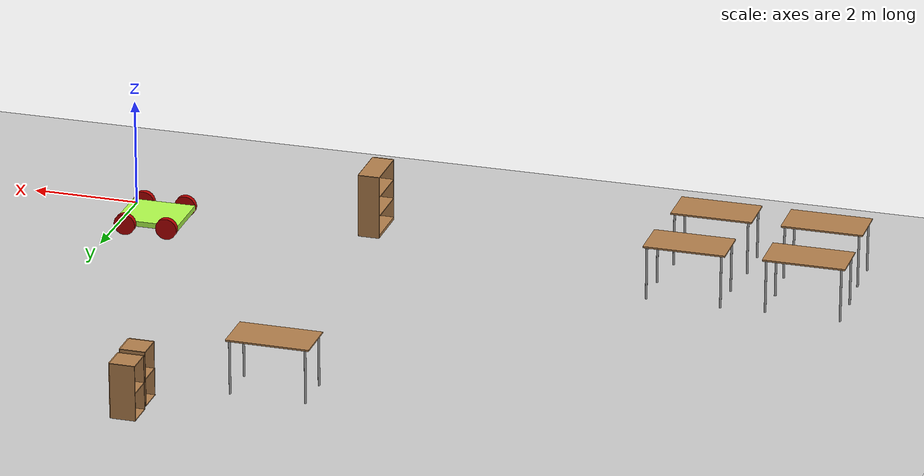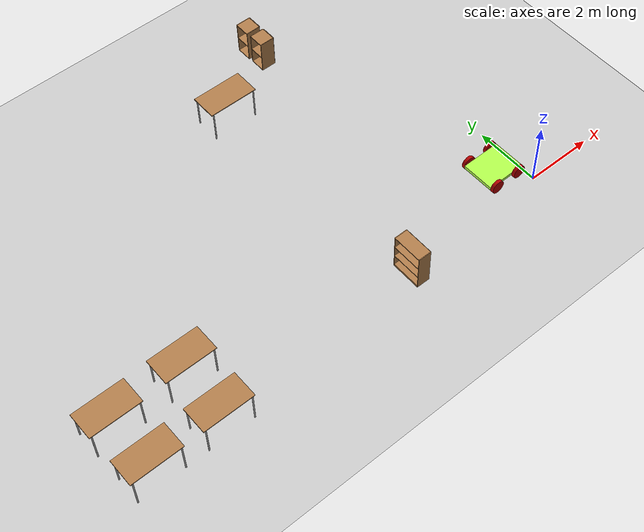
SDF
<sdf version="1.6">
 <world name="default">
  <model name="ground_plane">
   <static>1</static>
   <link name="link">
    <collision name="collision">
     <geometry><plane><normal>0 0 1</normal><size>100 100</size></plane></geometry>
     <surface>
      <contact><collide_bitmask>65535</collide_bitmask></contact>
      <friction><ode><mu>100</mu><mu2>50</mu2></ode></friction>
     </surface>
    </collision>
    <visual name="visual">
     <cast_shadows>0</cast_shadows>
     <geometry><plane><normal>0 0 1</normal><size>100 100</size></plane></geometry>
     <material>
      <script><uri>file://media/materials/scripts/gazebo.material</uri><name>Gazebo/Grey</name></script>
     </material>
    </visual>
   </link>
  </model>
  <model name="bookshelf_clone_1">
   <static>1</static>
   <link name="link">
    <inertial><mass>1</mass></inertial>
    <collision name="back">
     <pose>0 0.005 0.6 0 -0 0</pose>
     <geometry><box><size>0.9 0.01 1.2</size></box></geometry>
    </collision>
    <visual name="visual1">
     <pose>0 0.005 0.6 0 -0 0</pose>
     <geometry><box><size>0.9 0.01 1.2</size></box></geometry>
     <material>
      <script><uri>file://media/materials/scripts/gazebo.material</uri><name>Gazebo/Wood</name></script>
     </material>
    </visual>
    <collision name="left_side">
     <pose>0.45 -0.195 0.6 0 -0 0</pose>
     <geometry><box><size>0.02 0.4 1.2</size></box></geometry>
    </collision>
    <visual name="visual2">
     <pose>0.45 -0.195 0.6 0 -0 0</pose>
     <geometry><box><size>0.02 0.4 1.2</size></box></geometry>
     <material>
      <script><uri>file://media/materials/scripts/gazebo.material</uri><name>Gazebo/Wood</name></script>
     </material>
    </visual>
    <collision name="right_side">
     <pose>-0.45 -0.195 0.6 0 -0 0</pose>
     <geometry><box><size>0.02 0.4 1.2</size></box></geometry>
    </collision>
    <visual name="visual3">
     <pose>-0.45 -0.195 0.6 0 -0 0</pose>
     <geometry><box><size>0.02 0.4 1.2</size></box></geometry>
     <material>
      <script><uri>file://media/materials/scripts/gazebo.material</uri><name>Gazebo/Wood</name></script>
     </material>
    </visual>
    <collision name="bottom">
     <pose>0 -0.195 0.03 0 -0 0</pose>
     <geometry><box><size>0.88 0.4 0.06</size></box></geometry>
    </collision>
    <visual name="visual4">
     <pose>0 -0.195 0.03 0 -0 0</pose>
     <geometry><box><size>0.88 0.4 0.06</size></box></geometry>
     <material>
      <script><uri>file://media/materials/scripts/gazebo.material</uri><name>Gazebo/Wood</name></script>
     </material>
    </visual>
    <collision name="top">
     <pose>0 -0.195 1.19 0 -0 0</pose>
     <geometry><box><size>0.88 0.4 0.02</size></box></geometry>
    </collision>
    <visual name="visual5">
     <pose>0 -0.195 1.19 0 -0 0</pose>
     <geometry><box><size>0.88 0.4 0.02</size></box></geometry>
     <material>
      <script><uri>file://media/materials/scripts/gazebo.material</uri><name>Gazebo/Wood</name></script>
     </material>
    </visual>
    <collision name="low_shelf">
     <pose>0 -0.195 0.43 0 -0 0</pose>
     <geometry><box><size>0.88 0.4 0.02</size></box></geometry>
    </collision>
    <visual name="visual6">
     <pose>0 -0.195 0.43 0 -0 0</pose>
     <geometry><box><size>0.88 0.4 0.02</size></box></geometry>
     <material>
      <script><uri>file://media/materials/scripts/gazebo.material</uri><name>Gazebo/Wood</name></script>
     </material>
    </visual>
    <collision name="high_shelf">
     <pose>0 -0.195 0.8 0 -0 0</pose>
     <geometry><box><size>0.88 0.4 0.02</size></box></geometry>
    </collision>
    <visual name="visual7">
     <pose>0 -0.195 0.8 0 -0 0</pose>
     <geometry><box><size>0.88 0.4 0.02</size></box></geometry>
     <material>
      <script><uri>file://media/materials/scripts/gazebo.material</uri><name>Gazebo/Wood</name></script>
     </material>
    </visual>
   </link>
   <pose>-4.38763 -0.137134 0 0 0 -1.57079</pose>
  </model>
  <model name="table_clone_1">
   <static>1</static>
   <link name="link">
    <collision name="surface">
     <pose>0 0 1 0 -0 0</pose>
     <geometry><box><size>1.5 0.8 0.03</size></box></geometry>
     <surface><friction><ode><mu>0.6</mu><mu2>0.6</mu2></ode></friction></surface>
    </collision>
    <visual name="visual1">
     <pose>0 0 1 0 -0 0</pose>
     <geometry><box><size>1.5 0.8 0.03</size></box></geometry>
     <material>
      <script><uri>file://media/materials/scripts/gazebo.material</uri><name>Gazebo/Wood</name></script>
     </material>
    </visual>
    <collision name="front_left_leg">
     <pose>0.68 0.38 0.5 0 -0 0</pose>
     <geometry><cylinder><radius>0.02</radius><length>1</length></cylinder></geometry>
    </collision>
    <visual name="front_left_leg">
     <pose>0.68 0.38 0.5 0 -0 0</pose>
     <geometry><cylinder><radius>0.02</radius><length>1</length></cylinder></geometry>
     <material>
      <script><uri>file://media/materials/scripts/gazebo.material</uri><name>Gazebo/Grey</name></script>
     </material>
    </visual>
    <collision name="front_right_leg">
     <pose>0.68 -0.38 0.5 0 -0 0</pose>
     <geometry><cylinder><radius>0.02</radius><length>1</length></cylinder></geometry>
    </collision>
    <visual name="front_right_leg">
     <pose>0.68 -0.38 0.5 0 -0 0</pose>
     <geometry><cylinder><radius>0.02</radius><length>1</length></cylinder></geometry>
     <material>
      <script><uri>file://media/materials/scripts/gazebo.material</uri><name>Gazebo/Grey</name></script>
     </material>
    </visual>
    <collision name="back_right_leg">
     <pose>-0.68 -0.38 0.5 0 -0 0</pose>
     <geometry><cylinder><radius>0.02</radius><length>1</length></cylinder></geometry>
    </collision>
    <visual name="back_right_leg">
     <pose>-0.68 -0.38 0.5 0 -0 0</pose>
     <geometry><cylinder><radius>0.02</radius><length>1</length></cylinder></geometry>
     <material>
      <script><uri>file://media/materials/scripts/gazebo.material</uri><name>Gazebo/Grey</name></script>
     </material>
    </visual>
    <collision name="back_left_leg">
     <pose>-0.68 0.38 0.5 0 -0 0</pose>
     <geometry><cylinder><radius>0.02</radius><length>1</length></cylinder></geometry>
    </collision>
    <visual name="back_left_leg">
     <pose>-0.68 0.38 0.5 0 -0 0</pose>
     <geometry><cylinder><radius>0.02</radius><length>1</length></cylinder></geometry>
     <material>
      <script><uri>file://media/materials/scripts/gazebo.material</uri><name>Gazebo/Grey</name></script>
     </material>
    </visual>
   </link>
   <pose>-5.00424 7.11061 0 0 -0 0</pose>
  </model>
  <model name="cabinet">
   <static>1</static>
   <link name="cabinet_bottom_plate">
    <inertial>
     <pose>0 0 -1 0 -0 0</pose>
     <inertia><ixx>2.05</ixx><ixy>0</ixy><ixz>0</ixz><iyy>2.05</iyy><iyz>0</iyz><izz>2.05</izz></inertia>
     <mass>25</mass>
    </inertial>
    <collision name="cabinet_bottom_plate_geom">
     <pose>0 0 0.01 0 -0 0</pose>
     <geometry><box><size>0.45 0.45 0.02</size></box></geometry>
    </collision>
    <visual name="cabinet_bottom_plate_geom_visual">
     <pose>0 0 0.01 0 -0 0</pose>
     <geometry><box><size>0.45 0.45 0.02</size></box></geometry>
     <material>
      <script><uri>file://media/materials/scripts/gazebo.material</uri><name>Gazebo/Wood</name></script>
     </material>
    </visual>
    <collision name="cabinet_bottom_plate_geom_cabinet_back_plate">
     <pose>0.235 0 0.51 0 -0 0</pose>
     <geometry><box><size>0.02 0.45 1.02</size></box></geometry>
    </collision>
    <visual name="cabinet_bottom_plate_geom_cabinet_back_plate_visual">
     <pose>0.235 0 0.51 0 -0 0</pose>
     <geometry><box><size>0.02 0.45 1.02</size></box></geometry>
     <material>
      <script><uri>file://media/materials/scripts/gazebo.material</uri><name>Gazebo/Wood</name></script>
     </material>
    </visual>
    <collision name="cabinet_bottom_plate_geom_cabinet_left_plate">
     <pose>0 0.235 0.51 0 -0 0</pose>
     <geometry><box><size>0.45 0.02 1.02</size></box></geometry>
    </collision>
    <visual name="cabinet_bottom_plate_geom_cabinet_left_plate_visual">
     <pose>0 0.235 0.51 0 -0 0</pose>
     <geometry><box><size>0.45 0.02 1.02</size></box></geometry>
     <material>
      <script><uri>file://media/materials/scripts/gazebo.material</uri><name>Gazebo/Wood</name></script>
     </material>
    </visual>
    <collision name="cabinet_bottom_plate_geom_cabinet_middle_plate">
     <pose>0 0 0.51 0 -0 0</pose>
     <geometry><box><size>0.45 0.45 0.02</size></box></geometry>
    </collision>
    <visual name="cabinet_bottom_plate_geom_cabinet_middle_plate_visual">
     <pose>0 0 0.51 0 -0 0</pose>
     <geometry><box><size>0.45 0.45 0.02</size></box></geometry>
     <material>
      <script><uri>file://media/materials/scripts/gazebo.material</uri><name>Gazebo/Wood</name></script>
     </material>
    </visual>
    <collision name="cabinet_bottom_plate_geom_cabinet_right_plate">
     <pose>0 -0.235 0.51 0 -0 0</pose>
     <geometry><box><size>0.45 0.02 1.02</size></box></geometry>
    </collision>
    <visual name="cabinet_bottom_plate_geom_cabinet_right_plate_visual">
     <pose>0 -0.235 0.51 0 -0 0</pose>
     <geometry><box><size>0.45 0.02 1.02</size></box></geometry>
     <material>
      <script><uri>file://media/materials/scripts/gazebo.material</uri><name>Gazebo/Wood</name></script>
     </material>
    </visual>
    <collision name="cabinet_bottom_plate_geom_cabinet_top_plate">
     <pose>0 0 1.01 0 -0 0</pose>
     <geometry><box><size>0.45 0.45 0.02</size></box></geometry>
    </collision>
    <visual name="cabinet_bottom_plate_geom_cabinet_top_plate_visual">
     <pose>0 0 1.01 0 -0 0</pose>
     <geometry><box><size>0.45 0.45 0.02</size></box></geometry>
     <material>
      <script><uri>file://media/materials/scripts/gazebo.material</uri><name>Gazebo/Wood</name></script>
     </material>
    </visual>
   </link>
   <pose>-2.91281 8.76988 0 0 -0 0</pose>
  </model>
  <model name="cabinet_clone">
   <static>1</static>
   <link name="cabinet_bottom_plate">
    <inertial>
     <pose>0 0 -1 0 -0 0</pose>
     <inertia><ixx>2.05</ixx><ixy>0</ixy><ixz>0</ixz><iyy>2.05</iyy><iyz>0</iyz><izz>2.05</izz></inertia>
     <mass>25</mass>
    </inertial>
    <collision name="cabinet_bottom_plate_geom">
     <pose>0 0 0.01 0 -0 0</pose>
     <geometry><box><size>0.45 0.45 0.02</size></box></geometry>
    </collision>
    <visual name="cabinet_bottom_plate_geom_visual">
     <pose>0 0 0.01 0 -0 0</pose>
     <geometry><box><size>0.45 0.45 0.02</size></box></geometry>
     <material>
      <script><uri>file://media/materials/scripts/gazebo.material</uri><name>Gazebo/Wood</name></script>
     </material>
    </visual>
    <collision name="cabinet_bottom_plate_geom_cabinet_back_plate">
     <pose>0.235 0 0.51 0 -0 0</pose>
     <geometry><box><size>0.02 0.45 1.02</size></box></geometry>
    </collision>
    <visual name="cabinet_bottom_plate_geom_cabinet_back_plate_visual">
     <pose>0.235 0 0.51 0 -0 0</pose>
     <geometry><box><size>0.02 0.45 1.02</size></box></geometry>
     <material>
      <script><uri>file://media/materials/scripts/gazebo.material</uri><name>Gazebo/Wood</name></script>
     </material>
    </visual>
    <collision name="cabinet_bottom_plate_geom_cabinet_left_plate">
     <pose>0 0.235 0.51 0 -0 0</pose>
     <geometry><box><size>0.45 0.02 1.02</size></box></geometry>
    </collision>
    <visual name="cabinet_bottom_plate_geom_cabinet_left_plate_visual">
     <pose>0 0.235 0.51 0 -0 0</pose>
     <geometry><box><size>0.45 0.02 1.02</size></box></geometry>
     <material>
      <script><uri>file://media/materials/scripts/gazebo.material</uri><name>Gazebo/Wood</name></script>
     </material>
    </visual>
    <collision name="cabinet_bottom_plate_geom_cabinet_middle_plate">
     <pose>0 0 0.51 0 -0 0</pose>
     <geometry><box><size>0.45 0.45 0.02</size></box></geometry>
    </collision>
    <visual name="cabinet_bottom_plate_geom_cabinet_middle_plate_visual">
     <pose>0 0 0.51 0 -0 0</pose>
     <geometry><box><size>0.45 0.45 0.02</size></box></geometry>
     <material>
      <script><uri>file://media/materials/scripts/gazebo.material</uri><name>Gazebo/Wood</name></script>
     </material>
    </visual>
    <collision name="cabinet_bottom_plate_geom_cabinet_right_plate">
     <pose>0 -0.235 0.51 0 -0 0</pose>
     <geometry><box><size>0.45 0.02 1.02</size></box></geometry>
    </collision>
    <visual name="cabinet_bottom_plate_geom_cabinet_right_plate_visual">
     <pose>0 -0.235 0.51 0 -0 0</pose>
     <geometry><box><size>0.45 0.02 1.02</size></box></geometry>
     <material>
      <script><uri>file://media/materials/scripts/gazebo.material</uri><name>Gazebo/Wood</name></script>
     </material>
    </visual>
    <collision name="cabinet_bottom_plate_geom_cabinet_top_plate">
     <pose>0 0 1.01 0 -0 0</pose>
     <geometry><box><size>0.45 0.45 0.02</size></box></geometry>
    </collision>
    <visual name="cabinet_bottom_plate_geom_cabinet_top_plate_visual">
     <pose>0 0 1.01 0 -0 0</pose>
     <geometry><box><size>0.45 0.45 0.02</size></box></geometry>
     <material>
      <script><uri>file://media/materials/scripts/gazebo.material</uri><name>Gazebo/Wood</name></script>
     </material>
    </visual>
   </link>
   <pose>-2.88879 8.16382 0 0 -0 0</pose>
  </model>
  <model name="table_0">
   <static>1</static>
   <link name="link">
    <collision name="surface">
     <pose>0 0 1 0 -0 0</pose>
     <geometry><box><size>1.5 0.8 0.03</size></box></geometry>
     <surface><friction><ode><mu>0.6</mu><mu2>0.6</mu2></ode></friction></surface>
    </collision>
    <visual name="visual1">
     <pose>0 0 1 0 -0 0</pose>
     <geometry><box><size>1.5 0.8 0.03</size></box></geometry>
     <material>
      <script><uri>file://media/materials/scripts/gazebo.material</uri><name>Gazebo/Wood</name></script>
     </material>
    </visual>
    <collision name="front_left_leg">
     <pose>0.68 0.38 0.5 0 -0 0</pose>
     <geometry><cylinder><radius>0.02</radius><length>1</length></cylinder></geometry>
    </collision>
    <visual name="front_left_leg">
     <pose>0.68 0.38 0.5 0 -0 0</pose>
     <geometry><cylinder><radius>0.02</radius><length>1</length></cylinder></geometry>
     <material>
      <script><uri>file://media/materials/scripts/gazebo.material</uri><name>Gazebo/Grey</name></script>
     </material>
    </visual>
    <collision name="front_right_leg">
     <pose>0.68 -0.38 0.5 0 -0 0</pose>
     <geometry><cylinder><radius>0.02</radius><length>1</length></cylinder></geometry>
    </collision>
    <visual name="front_right_leg">
     <pose>0.68 -0.38 0.5 0 -0 0</pose>
     <geometry><cylinder><radius>0.02</radius><length>1</length></cylinder></geometry>
     <material>
      <script><uri>file://media/materials/scripts/gazebo.material</uri><name>Gazebo/Grey</name></script>
     </material>
    </visual>
    <collision name="back_right_leg">
     <pose>-0.68 -0.38 0.5 0 -0 0</pose>
     <geometry><cylinder><radius>0.02</radius><length>1</length></cylinder></geometry>
    </collision>
    <visual name="back_right_leg">
     <pose>-0.68 -0.38 0.5 0 -0 0</pose>
     <geometry><cylinder><radius>0.02</radius><length>1</length></cylinder></geometry>
     <material>
      <script><uri>file://media/materials/scripts/gazebo.material</uri><name>Gazebo/Grey</name></script>
     </material>
    </visual>
    <collision name="back_left_leg">
     <pose>-0.68 0.38 0.5 0 -0 0</pose>
     <geometry><cylinder><radius>0.02</radius><length>1</length></cylinder></geometry>
    </collision>
    <visual name="back_left_leg">
     <pose>-0.68 0.38 0.5 0 -0 0</pose>
     <geometry><cylinder><radius>0.02</radius><length>1</length></cylinder></geometry>
     <material>
      <script><uri>file://media/materials/scripts/gazebo.material</uri><name>Gazebo/Grey</name></script>
     </material>
    </visual>
   </link>
   <pose>-10.8148 1.15972 0 0 -0 0</pose>
  </model>
  <model name="table_0_clone">
   <static>1</static>
   <link name="link">
    <collision name="surface">
     <pose>0 0 1 0 -0 0</pose>
     <geometry><box><size>1.5 0.8 0.03</size></box></geometry>
     <surface><friction><ode><mu>0.6</mu><mu2>0.6</mu2></ode></friction></surface>
    </collision>
    <visual name="visual1">
     <pose>0 0 1 0 -0 0</pose>
     <geometry><box><size>1.5 0.8 0.03</size></box></geometry>
     <material>
      <script><uri>file://media/materials/scripts/gazebo.material</uri><name>Gazebo/Wood</name></script>
     </material>
    </visual>
    <collision name="front_left_leg">
     <pose>0.68 0.38 0.5 0 -0 0</pose>
     <geometry><cylinder><radius>0.02</radius><length>1</length></cylinder></geometry>
    </collision>
    <visual name="front_left_leg">
     <pose>0.68 0.38 0.5 0 -0 0</pose>
     <geometry><cylinder><radius>0.02</radius><length>1</length></cylinder></geometry>
     <material>
      <script><uri>file://media/materials/scripts/gazebo.material</uri><name>Gazebo/Grey</name></script>
     </material>
    </visual>
    <collision name="front_right_leg">
     <pose>0.68 -0.38 0.5 0 -0 0</pose>
     <geometry><cylinder><radius>0.02</radius><length>1</length></cylinder></geometry>
    </collision>
    <visual name="front_right_leg">
     <pose>0.68 -0.38 0.5 0 -0 0</pose>
     <geometry><cylinder><radius>0.02</radius><length>1</length></cylinder></geometry>
     <material>
      <script><uri>file://media/materials/scripts/gazebo.material</uri><name>Gazebo/Grey</name></script>
     </material>
    </visual>
    <collision name="back_right_leg">
     <pose>-0.68 -0.38 0.5 0 -0 0</pose>
     <geometry><cylinder><radius>0.02</radius><length>1</length></cylinder></geometry>
    </collision>
    <visual name="back_right_leg">
     <pose>-0.68 -0.38 0.5 0 -0 0</pose>
     <geometry><cylinder><radius>0.02</radius><length>1</length></cylinder></geometry>
     <material>
      <script><uri>file://media/materials/scripts/gazebo.material</uri><name>Gazebo/Grey</name></script>
     </material>
    </visual>
    <collision name="back_left_leg">
     <pose>-0.68 0.38 0.5 0 -0 0</pose>
     <geometry><cylinder><radius>0.02</radius><length>1</length></cylinder></geometry>
    </collision>
    <visual name="back_left_leg">
     <pose>-0.68 0.38 0.5 0 -0 0</pose>
     <geometry><cylinder><radius>0.02</radius><length>1</length></cylinder></geometry>
     <material>
      <script><uri>file://media/materials/scripts/gazebo.material</uri><name>Gazebo/Grey</name></script>
     </material>
    </visual>
   </link>
   <pose>-12.9841 1.12951 0 0 -0 0</pose>
  </model>
  <model name="table_0_clone_0">
   <static>1</static>
   <link name="link">
    <collision name="surface">
     <pose>0 0 1 0 -0 0</pose>
     <geometry><box><size>1.5 0.8 0.03</size></box></geometry>
     <surface><friction><ode><mu>0.6</mu><mu2>0.6</mu2></ode></friction></surface>
    </collision>
    <visual name="visual1">
     <pose>0 0 1 0 -0 0</pose>
     <geometry><box><size>1.5 0.8 0.03</size></box></geometry>
     <material>
      <script><uri>file://media/materials/scripts/gazebo.material</uri><name>Gazebo/Wood</name></script>
     </material>
    </visual>
    <collision name="front_left_leg">
     <pose>0.68 0.38 0.5 0 -0 0</pose>
     <geometry><cylinder><radius>0.02</radius><length>1</length></cylinder></geometry>
    </collision>
    <visual name="front_left_leg">
     <pose>0.68 0.38 0.5 0 -0 0</pose>
     <geometry><cylinder><radius>0.02</radius><length>1</length></cylinder></geometry>
     <material>
      <script><uri>file://media/materials/scripts/gazebo.material</uri><name>Gazebo/Grey</name></script>
     </material>
    </visual>
    <collision name="front_right_leg">
     <pose>0.68 -0.38 0.5 0 -0 0</pose>
     <geometry><cylinder><radius>0.02</radius><length>1</length></cylinder></geometry>
    </collision>
    <visual name="front_right_leg">
     <pose>0.68 -0.38 0.5 0 -0 0</pose>
     <geometry><cylinder><radius>0.02</radius><length>1</length></cylinder></geometry>
     <material>
      <script><uri>file://media/materials/scripts/gazebo.material</uri><name>Gazebo/Grey</name></script>
     </material>
    </visual>
    <collision name="back_right_leg">
     <pose>-0.68 -0.38 0.5 0 -0 0</pose>
     <geometry><cylinder><radius>0.02</radius><length>1</length></cylinder></geometry>
    </collision>
    <visual name="back_right_leg">
     <pose>-0.68 -0.38 0.5 0 -0 0</pose>
     <geometry><cylinder><radius>0.02</radius><length>1</length></cylinder></geometry>
     <material>
      <script><uri>file://media/materials/scripts/gazebo.material</uri><name>Gazebo/Grey</name></script>
     </material>
    </visual>
    <collision name="back_left_leg">
     <pose>-0.68 0.38 0.5 0 -0 0</pose>
     <geometry><cylinder><radius>0.02</radius><length>1</length></cylinder></geometry>
    </collision>
    <visual name="back_left_leg">
     <pose>-0.68 0.38 0.5 0 -0 0</pose>
     <geometry><cylinder><radius>0.02</radius><length>1</length></cylinder></geometry>
     <material>
      <script><uri>file://media/materials/scripts/gazebo.material</uri><name>Gazebo/Grey</name></script>
     </material>
    </visual>
   </link>
   <pose>-12.9411 -0.439176 0 0 -0 0</pose>
  </model>
  <model name="table_0_clone_3">
   <static>1</static>
   <link name="link">
    <collision name="surface">
     <pose>0 0 1 0 -0 0</pose>
     <geometry><box><size>1.5 0.8 0.03</size></box></geometry>
     <surface><friction><ode><mu>0.6</mu><mu2>0.6</mu2></ode></friction></surface>
    </collision>
    <visual name="visual1">
     <pose>0 0 1 0 -0 0</pose>
     <geometry><box><size>1.5 0.8 0.03</size></box></geometry>
     <material>
      <script><uri>file://media/materials/scripts/gazebo.material</uri><name>Gazebo/Wood</name></script>
     </material>
    </visual>
    <collision name="front_left_leg">
     <pose>0.68 0.38 0.5 0 -0 0</pose>
     <geometry><cylinder><radius>0.02</radius><length>1</length></cylinder></geometry>
    </collision>
    <visual name="front_left_leg">
     <pose>0.68 0.38 0.5 0 -0 0</pose>
     <geometry><cylinder><radius>0.02</radius><length>1</length></cylinder></geometry>
     <material>
      <script><uri>file://media/materials/scripts/gazebo.material</uri><name>Gazebo/Grey</name></script>
     </material>
    </visual>
    <collision name="front_right_leg">
     <pose>0.68 -0.38 0.5 0 -0 0</pose>
     <geometry><cylinder><radius>0.02</radius><length>1</length></cylinder></geometry>
    </collision>
    <visual name="front_right_leg">
     <pose>0.68 -0.38 0.5 0 -0 0</pose>
     <geometry><cylinder><radius>0.02</radius><length>1</length></cylinder></geometry>
     <material>
      <script><uri>file://media/materials/scripts/gazebo.material</uri><name>Gazebo/Grey</name></script>
     </material>
    </visual>
    <collision name="back_right_leg">
     <pose>-0.68 -0.38 0.5 0 -0 0</pose>
     <geometry><cylinder><radius>0.02</radius><length>1</length></cylinder></geometry>
    </collision>
    <visual name="back_right_leg">
     <pose>-0.68 -0.38 0.5 0 -0 0</pose>
     <geometry><cylinder><radius>0.02</radius><length>1</length></cylinder></geometry>
     <material>
      <script><uri>file://media/materials/scripts/gazebo.material</uri><name>Gazebo/Grey</name></script>
     </material>
    </visual>
    <collision name="back_left_leg">
     <pose>-0.68 0.38 0.5 0 -0 0</pose>
     <geometry><cylinder><radius>0.02</radius><length>1</length></cylinder></geometry>
    </collision>
    <visual name="back_left_leg">
     <pose>-0.68 0.38 0.5 0 -0 0</pose>
     <geometry><cylinder><radius>0.02</radius><length>1</length></cylinder></geometry>
     <material>
      <script><uri>file://media/materials/scripts/gazebo.material</uri><name>Gazebo/Grey</name></script>
     </material>
    </visual>
   </link>
   <pose>-10.9058 -0.444002 0 0 -0 0</pose>
  </model>
  <model name="SimpleCar">
   <link name="link_0">
    <inertial>
     <mass>1</mass>
     <inertia>
      <ixx>0.166667</ixx>
      <ixy>0</ixy>
      <ixz>0</ixz>
      <iyy>0.166667</iyy>
      <iyz>0</iyz>
      <izz>0.166667</izz>
     </inertia>
    </inertial>
    <visual name="visual">
     <geometry><box><size>1.2 1 0.1</size></box></geometry>
     <material>
      <lighting>1</lighting>
      <script><uri>file://media/materials/scripts/gazebo.material</uri><name>Gazebo/Grey</name></script>
      <shader type="pixel"><normal_map>__default__</normal_map></shader>
      <ambient>0.7 1 0.3 1</ambient>
      <diffuse>0.7 1 0.3 1</diffuse>
      <specular>0 0 0 1</specular>
      <emissive>0 0 0 1</emissive>
     </material>
    </visual>
    <collision name="collision">
     <geometry><box><size>1.2 1 0.1</size></box></geometry>
     <surface>
      <friction>
       <ode><mu>1</mu><mu2>1</mu2><fdir1>0 0 0</fdir1><slip1>0</slip1><slip2>0</slip2></ode>
       <torsional>
        <coefficient>1</coefficient>
        <patch_radius>0</patch_radius>
        <surface_radius>0</surface_radius>
        <use_patch_radius>1</use_patch_radius>
        <ode><slip>0</slip></ode>
       </torsional>
      </friction>
      <bounce><restitution_coefficient>0</restitution_coefficient><threshold>1e+06</threshold></bounce>
      <contact>
       <collide_without_contact>0</collide_without_contact>
       <collide_without_contact_bitmask>1</collide_without_contact_bitmask>
       <collide_bitmask>1</collide_bitmask>
       <ode>
        <soft_cfm>0</soft_cfm>
        <soft_erp>0.2</soft_erp>
        <kp>1e+13</kp>
        <kd>1</kd>
        <max_vel>0.01</max_vel>
        <min_depth>0</min_depth>
       </ode>
       <bullet>
        <split_impulse>1</split_impulse>
        <split_impulse_penetration_threshold>-0.01</split_impulse_penetration_threshold>
        <soft_cfm>0</soft_cfm>
        <soft_erp>0.2</soft_erp>
        <kp>1e+13</kp>
        <kd>1</kd>
       </bullet>
      </contact>
     </surface>
    </collision>
   </link>
   <link name="link_1">
    <pose>0.4 -0.550019 0 1.5707 -0 0</pose>
    <inertial>
     <mass>1</mass>
     <inertia><ixx>0.145833</ixx><ixy>0</ixy><ixz>0</ixz><iyy>0.145833</iyy><iyz>0</iyz><izz>0.125</izz></inertia>
    </inertial>
    <visual name="visual">
     <geometry><cylinder><radius>0.2</radius><length>0.1</length></cylinder></geometry>
     <material>
      <lighting>1</lighting>
      <script><uri>file://media/materials/scripts/gazebo.material</uri><name>Gazebo/Grey</name></script>
      <shader type="pixel"><normal_map>__default__</normal_map></shader>
      <ambient>1 0 0 1</ambient>
      <diffuse>0.7 0 0 1</diffuse>
      <specular>0.01 0.01 0.01 1</specular>
      <emissive>0 0 0 1</emissive>
     </material>
    </visual>
    <collision name="collision">
     <geometry><cylinder><radius>0.2</radius><length>0.1</length></cylinder></geometry>
     <surface>
      <friction>
       <ode><mu>1</mu><mu2>1</mu2><fdir1>0 0 0</fdir1><slip1>0</slip1><slip2>0</slip2></ode>
       <torsional>
        <coefficient>1</coefficient>
        <patch_radius>0</patch_radius>
        <surface_radius>0</surface_radius>
        <use_patch_radius>1</use_patch_radius>
        <ode><slip>0</slip></ode>
       </torsional>
      </friction>
      <bounce><restitution_coefficient>0</restitution_coefficient><threshold>1e+06</threshold></bounce>
      <contact>
       <collide_without_contact>0</collide_without_contact>
       <collide_without_contact_bitmask>1</collide_without_contact_bitmask>
       <collide_bitmask>1</collide_bitmask>
       <ode>
        <soft_cfm>0</soft_cfm>
        <soft_erp>0.2</soft_erp>
        <kp>1e+13</kp>
        <kd>1</kd>
        <max_vel>0.01</max_vel>
        <min_depth>0</min_depth>
       </ode>
       <bullet>
        <split_impulse>1</split_impulse>
        <split_impulse_penetration_threshold>-0.01</split_impulse_penetration_threshold>
        <soft_cfm>0</soft_cfm>
        <soft_erp>0.2</soft_erp>
        <kp>1e+13</kp>
        <kd>1</kd>
       </bullet>
      </contact>
     </surface>
    </collision>
   </link>
   <link name="link_1_clone">
    <pose>-0.4 0.550019 0 1.5707 -0 0</pose>
    <inertial>
     <mass>1</mass>
     <inertia><ixx>0.145833</ixx><ixy>0</ixy><ixz>0</ixz><iyy>0.145833</iyy><iyz>0</iyz><izz>0.125</izz></inertia>
    </inertial>
    <visual name="visual">
     <geometry><cylinder><radius>0.2</radius><length>0.1</length></cylinder></geometry>
     <material>
      <lighting>1</lighting>
      <script><uri>file://media/materials/scripts/gazebo.material</uri><name>Gazebo/Grey</name></script>
      <shader type="pixel"><normal_map>__default__</normal_map></shader>
      <ambient>1 0 0 1</ambient>
      <diffuse>0.7 0 0 1</diffuse>
      <specular>0.01 0.01 0.01 1</specular>
      <emissive>0 0 0 1</emissive>
     </material>
    </visual>
    <collision name="collision">
     <geometry><cylinder><radius>0.2</radius><length>0.1</length></cylinder></geometry>
     <surface>
      <friction>
       <ode><mu>1</mu><mu2>1</mu2><fdir1>0 0 0</fdir1><slip1>0</slip1><slip2>0</slip2></ode>
       <torsional>
        <coefficient>1</coefficient>
        <patch_radius>0</patch_radius>
        <surface_radius>0</surface_radius>
        <use_patch_radius>1</use_patch_radius>
        <ode><slip>0</slip></ode>
       </torsional>
      </friction>
      <bounce><restitution_coefficient>0</restitution_coefficient><threshold>1e+06</threshold></bounce>
      <contact>
       <collide_without_contact>0</collide_without_contact>
       <collide_without_contact_bitmask>1</collide_without_contact_bitmask>
       <collide_bitmask>1</collide_bitmask>
       <ode>
        <soft_cfm>0</soft_cfm>
        <soft_erp>0.2</soft_erp>
        <kp>1e+13</kp>
        <kd>1</kd>
        <max_vel>0.01</max_vel>
        <min_depth>0</min_depth>
       </ode>
       <bullet>
        <split_impulse>1</split_impulse>
        <split_impulse_penetration_threshold>-0.01</split_impulse_penetration_threshold>
        <soft_cfm>0</soft_cfm>
        <soft_erp>0.2</soft_erp>
        <kp>1e+13</kp>
        <kd>1</kd>
       </bullet>
      </contact>
     </surface>
    </collision>
   </link>
   <link name="link_1_clone_0">
    <pose>0.4 0.550019 0 1.5707 -0 0</pose>
    <inertial>
     <mass>1</mass>
     <inertia><ixx>0.145833</ixx><ixy>0</ixy><ixz>0</ixz><iyy>0.145833</iyy><iyz>0</iyz><izz>0.125</izz></inertia>
    </inertial>
    <visual name="visual">
     <geometry><cylinder><radius>0.2</radius><length>0.1</length></cylinder></geometry>
     <material>
      <lighting>1</lighting>
      <script><uri>file://media/materials/scripts/gazebo.material</uri><name>Gazebo/Grey</name></script>
      <shader type="pixel"><normal_map>__default__</normal_map></shader>
      <ambient>1 0 0 1</ambient>
      <diffuse>0.7 0 0 1</diffuse>
      <specular>0.01 0.01 0.01 1</specular>
      <emissive>0 0 0 1</emissive>
     </material>
    </visual>
    <collision name="collision">
     <geometry><cylinder><radius>0.2</radius><length>0.1</length></cylinder></geometry>
     <surface>
      <friction>
       <ode><mu>1</mu><mu2>1</mu2><fdir1>0 0 0</fdir1><slip1>0</slip1><slip2>0</slip2></ode>
       <torsional>
        <coefficient>1</coefficient>
        <patch_radius>0</patch_radius>
        <surface_radius>0</surface_radius>
        <use_patch_radius>1</use_patch_radius>
        <ode><slip>0</slip></ode>
       </torsional>
      </friction>
      <bounce><restitution_coefficient>0</restitution_coefficient><threshold>1e+06</threshold></bounce>
      <contact>
       <collide_without_contact>0</collide_without_contact>
       <collide_without_contact_bitmask>1</collide_without_contact_bitmask>
       <collide_bitmask>1</collide_bitmask>
       <ode>
        <soft_cfm>0</soft_cfm>
        <soft_erp>0.2</soft_erp>
        <kp>1e+13</kp>
        <kd>1</kd>
        <max_vel>0.01</max_vel>
        <min_depth>0</min_depth>
       </ode>
       <bullet>
        <split_impulse>1</split_impulse>
        <split_impulse_penetration_threshold>-0.01</split_impulse_penetration_threshold>
        <soft_cfm>0</soft_cfm>
        <soft_erp>0.2</soft_erp>
        <kp>1e+13</kp>
        <kd>1</kd>
       </bullet>
      </contact>
     </surface>
    </collision>
   </link>
   <link name="link_1_clone_1">
    <pose>-0.4 -0.550019 0 1.5707 -0 0</pose>
    <inertial>
     <mass>1</mass>
     <inertia><ixx>0.145833</ixx><ixy>0</ixy><ixz>0</ixz><iyy>0.145833</iyy><iyz>0</iyz><izz>0.125</izz></inertia>
    </inertial>
    <visual name="visual">
     <geometry><cylinder><radius>0.2</radius><length>0.1</length></cylinder></geometry>
     <material>
      <lighting>1</lighting>
      <script><uri>file://media/materials/scripts/gazebo.material</uri><name>Gazebo/Grey</name></script>
      <shader type="pixel"><normal_map>__default__</normal_map></shader>
      <ambient>1 0 0 1</ambient>
      <diffuse>0.7 0 0 1</diffuse>
      <specular>0.01 0.01 0.01 1</specular>
      <emissive>0 0 0 1</emissive>
     </material>
    </visual>
    <collision name="collision">
     <geometry><cylinder><radius>0.2</radius><length>0.1</length></cylinder></geometry>
     <surface>
      <friction>
       <ode><mu>1</mu><mu2>1</mu2><fdir1>0 0 0</fdir1><slip1>0</slip1><slip2>0</slip2></ode>
       <torsional>
        <coefficient>1</coefficient>
        <patch_radius>0</patch_radius>
        <surface_radius>0</surface_radius>
        <use_patch_radius>1</use_patch_radius>
        <ode><slip>0</slip></ode>
       </torsional>
      </friction>
      <bounce><restitution_coefficient>0</restitution_coefficient><threshold>1e+06</threshold></bounce>
      <contact>
       <collide_without_contact>0</collide_without_contact>
       <collide_without_contact_bitmask>1</collide_without_contact_bitmask>
       <collide_bitmask>1</collide_bitmask>
       <ode>
        <soft_cfm>0</soft_cfm>
        <soft_erp>0.2</soft_erp>
        <kp>1e+13</kp>
        <kd>1</kd>
        <max_vel>0.01</max_vel>
        <min_depth>0</min_depth>
       </ode>
       <bullet>
        <split_impulse>1</split_impulse>
        <split_impulse_penetration_threshold>-0.01</split_impulse_penetration_threshold>
        <soft_cfm>0</soft_cfm>
        <soft_erp>0.2</soft_erp>
        <kp>1e+13</kp>
        <kd>1</kd>
       </bullet>
      </contact>
     </surface>
    </collision>
   </link>
   <joint name="link_0_JOINT_1" type="revolute">
    <parent>link_0</parent>
    <child>link_1_clone</child>
    <axis>
     <xyz>0 0 1</xyz>
     <use_parent_model_frame>0</use_parent_model_frame>
     <limit>
      <lower>-1.79769e+308</lower>
      <upper>1.79769e+308</upper>
      <effort>-1</effort>
      <velocity>-1</velocity>
     </limit>
     <dynamics>
      <spring_reference>0</spring_reference>
      <spring_stiffness>0</spring_stiffness>
      <damping>0</damping>
      <friction>0</friction>
     </dynamics>
    </axis>
    <physics>
     <ode><limit><cfm>0</cfm><erp>0.2</erp></limit><suspension><cfm>0</cfm><erp>0.2</erp></suspension></ode>
    </physics>
   </joint>
   <joint name="link_0_JOINT_3" type="revolute">
    <parent>link_0</parent>
    <child>link_1_clone_0</child>
    <axis>
     <xyz>0 0 1</xyz>
     <use_parent_model_frame>0</use_parent_model_frame>
     <limit>
      <lower>-1.79769e+308</lower>
      <upper>1.79769e+308</upper>
      <effort>-1</effort>
      <velocity>-1</velocity>
     </limit>
     <dynamics>
      <spring_reference>0</spring_reference>
      <spring_stiffness>0</spring_stiffness>
      <damping>0</damping>
      <friction>0</friction>
     </dynamics>
    </axis>
    <physics>
     <ode><limit><cfm>0</cfm><erp>0.2</erp></limit><suspension><cfm>0</cfm><erp>0.2</erp></suspension></ode>
    </physics>
   </joint>
   <joint name="link_0_JOINT_4" type="revolute">
    <parent>link_0</parent>
    <child>link_1_clone_1</child>
    <axis>
     <xyz>0 0 1</xyz>
     <use_parent_model_frame>0</use_parent_model_frame>
     <limit>
      <lower>-1.79769e+308</lower>
      <upper>1.79769e+308</upper>
      <effort>-1</effort>
      <velocity>-1</velocity>
     </limit>
     <dynamics>
      <spring_reference>0</spring_reference>
      <spring_stiffness>0</spring_stiffness>
      <damping>0</damping>
      <friction>0</friction>
     </dynamics>
    </axis>
    <physics>
     <ode><limit><cfm>0</cfm><erp>0.2</erp></limit><suspension><cfm>0</cfm><erp>0.2</erp></suspension></ode>
    </physics>
   </joint>
   <joint name="link_0_JOINT_6" type="revolute">
    <parent>link_0</parent>
    <child>link_1</child>
    <axis>
     <xyz>0 0 1</xyz>
     <use_parent_model_frame>0</use_parent_model_frame>
     <limit>
      <lower>-1.79769e+308</lower>
      <upper>1.79769e+308</upper>
      <effort>-1</effort>
      <velocity>-1</velocity>
     </limit>
     <dynamics>
      <spring_reference>0</spring_reference>
      <spring_stiffness>0</spring_stiffness>
      <damping>0</damping>
      <friction>0</friction>
     </dynamics>
    </axis>
    <physics>
     <ode><limit><cfm>0</cfm><erp>0.2</erp></limit><suspension><cfm>0</cfm><erp>0.2</erp></suspension></ode>
    </physics>
   </joint>
   <static>0</static>
   <pose>-0.669525 0.887325 0.200005 0 -0 0.007639</pose>
  </model>
 </world>
</sdf>
